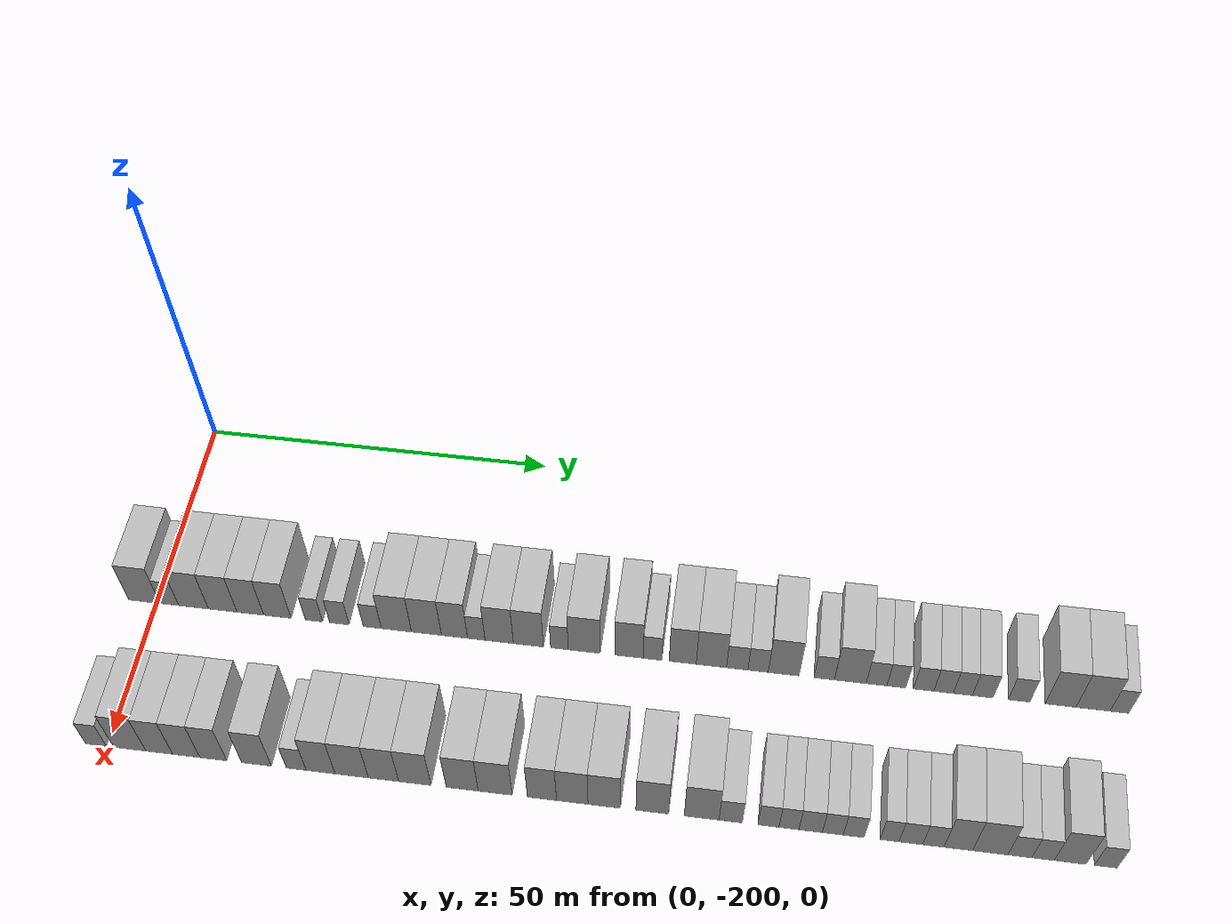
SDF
<sdf version="1.6">
 <world name="default">
  <model name="building_1">
   <static>1</static>
   <pose>25.0000 -201.7638 0 0.000000 0.000000 0.000000</pose>
   <link name="link">
    <pose>0 0 4.50 0 0 0</pose>
    <collision name="collision"><geometry><box><size>10.0000 4.4724 9.0000</size></box></geometry></collision>
    <visual name="visual">
     <cast_shadows>0</cast_shadows>
     <geometry><box><size>10.0000 4.4724 9.0000</size></box></geometry>
     <material>
      <script>
       <uri>model://HANNAS_wall/materials/scripts</uri>
       <uri>model://HANNAS_wall/materials/textures</uri>
       <name>vrc/HANNAS_wall</name>
      </script>
     </material>
    </visual>
   </link>
  </model>
  <model name="building_2">
   <static>1</static>
   <pose>25.0000 -198.2044 0 0.000000 0.000000 0.000000</pose>
   <link name="link">
    <pose>0 0 3.00 0 0 0</pose>
    <collision name="collision"><geometry><box><size>10.0000 2.6465 6.0000</size></box></geometry></collision>
    <visual name="visual">
     <cast_shadows>0</cast_shadows>
     <geometry><box><size>10.0000 2.6465 6.0000</size></box></geometry>
     <material>
      <script>
       <uri>model://HANNAS_wall/materials/scripts</uri>
       <uri>model://HANNAS_wall/materials/textures</uri>
       <name>vrc/HANNAS_wall</name>
      </script>
     </material>
    </visual>
   </link>
  </model>
  <model name="building_3">
   <static>1</static>
   <pose>25.0000 -194.7488 0 0.000000 0.000000 0.000000</pose>
   <link name="link">
    <pose>0 0 4.50 0 0 0</pose>
    <collision name="collision"><geometry><box><size>10.0000 4.2647 9.0000</size></box></geometry></collision>
    <visual name="visual">
     <cast_shadows>0</cast_shadows>
     <geometry><box><size>10.0000 4.2647 9.0000</size></box></geometry>
     <material>
      <script>
       <uri>model://HANNAS_wall/materials/scripts</uri>
       <uri>model://HANNAS_wall/materials/textures</uri>
       <name>vrc/HANNAS_wall</name>
      </script>
     </material>
    </visual>
   </link>
  </model>
  <model name="building_4">
   <static>1</static>
   <pose>25.0000 -190.5852 0 0.000000 0.000000 0.000000</pose>
   <link name="link">
    <pose>0 0 4.50 0 0 0</pose>
    <collision name="collision"><geometry><box><size>10.0000 4.0623 9.0000</size></box></geometry></collision>
    <visual name="visual">
     <cast_shadows>0</cast_shadows>
     <geometry><box><size>10.0000 4.0623 9.0000</size></box></geometry>
     <material>
      <script>
       <uri>model://HANNAS_wall/materials/scripts</uri>
       <uri>model://HANNAS_wall/materials/textures</uri>
       <name>vrc/HANNAS_wall</name>
      </script>
     </material>
    </visual>
   </link>
  </model>
  <model name="building_5">
   <static>1</static>
   <pose>25.0000 -186.6543 0 0.000000 0.000000 0.000000</pose>
   <link name="link">
    <pose>0 0 4.50 0 0 0</pose>
    <collision name="collision"><geometry><box><size>10.0000 3.7996 9.0000</size></box></geometry></collision>
    <visual name="visual">
     <cast_shadows>0</cast_shadows>
     <geometry><box><size>10.0000 3.7996 9.0000</size></box></geometry>
     <material>
      <script>
       <uri>model://HANNAS_wall/materials/scripts</uri>
       <uri>model://HANNAS_wall/materials/textures</uri>
       <name>vrc/HANNAS_wall</name>
      </script>
     </material>
    </visual>
   </link>
  </model>
  <model name="building_6">
   <static>1</static>
   <pose>25.0000 -182.8145 0 0.000000 0.000000 0.000000</pose>
   <link name="link">
    <pose>0 0 4.50 0 0 0</pose>
    <collision name="collision"><geometry><box><size>10.0000 3.8800 9.0000</size></box></geometry></collision>
    <visual name="visual">
     <cast_shadows>0</cast_shadows>
     <geometry><box><size>10.0000 3.8800 9.0000</size></box></geometry>
     <material>
      <script>
       <uri>model://HANNAS_wall/materials/scripts</uri>
       <uri>model://HANNAS_wall/materials/textures</uri>
       <name>vrc/HANNAS_wall</name>
      </script>
     </material>
    </visual>
   </link>
  </model>
  <model name="building_7">
   <static>1</static>
   <pose>25.0000 -177.6527 0 0.000000 0.000000 0.000000</pose>
   <link name="link">
    <pose>0 0 3.00 0 0 0</pose>
    <collision name="collision"><geometry><box><size>10.0000 2.4434 6.0000</size></box></geometry></collision>
    <visual name="visual">
     <cast_shadows>0</cast_shadows>
     <geometry><box><size>10.0000 2.4434 6.0000</size></box></geometry>
     <material>
      <script>
       <uri>model://HANNAS_wall/materials/scripts</uri>
       <uri>model://HANNAS_wall/materials/textures</uri>
       <name>vrc/HANNAS_wall</name>
      </script>
     </material>
    </visual>
   </link>
  </model>
  <model name="building_8">
   <static>1</static>
   <pose>25.0000 -174.0663 0 0.000000 0.000000 0.000000</pose>
   <link name="link">
    <pose>0 0 3.00 0 0 0</pose>
    <collision name="collision"><geometry><box><size>10.0000 2.7294 6.0000</size></box></geometry></collision>
    <visual name="visual">
     <cast_shadows>0</cast_shadows>
     <geometry><box><size>10.0000 2.7294 6.0000</size></box></geometry>
     <material>
      <script>
       <uri>model://HANNAS_wall/materials/scripts</uri>
       <uri>model://HANNAS_wall/materials/textures</uri>
       <name>vrc/HANNAS_wall</name>
      </script>
     </material>
    </visual>
   </link>
  </model>
  <model name="building_9">
   <static>1</static>
   <pose>25.0000 -169.4440 0 0.000000 0.000000 0.000000</pose>
   <link name="link">
    <pose>0 0 3.00 0 0 0</pose>
    <collision name="collision"><geometry><box><size>10.0000 2.5153 6.0000</size></box></geometry></collision>
    <visual name="visual">
     <cast_shadows>0</cast_shadows>
     <geometry><box><size>10.0000 2.5153 6.0000</size></box></geometry>
     <material>
      <script>
       <uri>model://HANNAS_wall/materials/scripts</uri>
       <uri>model://HANNAS_wall/materials/textures</uri>
       <name>vrc/HANNAS_wall</name>
      </script>
     </material>
    </visual>
   </link>
  </model>
  <model name="building_10">
   <static>1</static>
   <pose>25.0000 -166.0645 0 0.000000 0.000000 0.000000</pose>
   <link name="link">
    <pose>0 0 4.50 0 0 0</pose>
    <collision name="collision"><geometry><box><size>10.0000 4.2437 9.0000</size></box></geometry></collision>
    <visual name="visual">
     <cast_shadows>0</cast_shadows>
     <geometry><box><size>10.0000 4.2437 9.0000</size></box></geometry>
     <material>
      <script>
       <uri>model://HANNAS_wall/materials/scripts</uri>
       <uri>model://HANNAS_wall/materials/textures</uri>
       <name>vrc/HANNAS_wall</name>
      </script>
     </material>
    </visual>
   </link>
  </model>
  <model name="building_11">
   <static>1</static>
   <pose>25.0000 -161.8498 0 0.000000 0.000000 0.000000</pose>
   <link name="link">
    <pose>0 0 4.50 0 0 0</pose>
    <collision name="collision"><geometry><box><size>10.0000 4.1857 9.0000</size></box></geometry></collision>
    <visual name="visual">
     <cast_shadows>0</cast_shadows>
     <geometry><box><size>10.0000 4.1857 9.0000</size></box></geometry>
     <material>
      <script>
       <uri>model://HANNAS_wall/materials/scripts</uri>
       <uri>model://HANNAS_wall/materials/textures</uri>
       <name>vrc/HANNAS_wall</name>
      </script>
     </material>
    </visual>
   </link>
  </model>
  <model name="building_12">
   <static>1</static>
   <pose>25.0000 -157.9383 0 0.000000 0.000000 0.000000</pose>
   <link name="link">
    <pose>0 0 4.50 0 0 0</pose>
    <collision name="collision"><geometry><box><size>10.0000 3.6374 9.0000</size></box></geometry></collision>
    <visual name="visual">
     <cast_shadows>0</cast_shadows>
     <geometry><box><size>10.0000 3.6374 9.0000</size></box></geometry>
     <material>
      <script>
       <uri>model://HANNAS_wall/materials/scripts</uri>
       <uri>model://HANNAS_wall/materials/textures</uri>
       <name>vrc/HANNAS_wall</name>
      </script>
     </material>
    </visual>
   </link>
  </model>
  <model name="building_13">
   <static>1</static>
   <pose>25.0000 -154.9052 0 0.000000 0.000000 0.000000</pose>
   <link name="link">
    <pose>0 0 3.00 0 0 0</pose>
    <collision name="collision"><geometry><box><size>10.0000 2.4287 6.0000</size></box></geometry></collision>
    <visual name="visual">
     <cast_shadows>0</cast_shadows>
     <geometry><box><size>10.0000 2.4287 6.0000</size></box></geometry>
     <material>
      <script>
       <uri>model://HANNAS_wall/materials/scripts</uri>
       <uri>model://HANNAS_wall/materials/textures</uri>
       <name>vrc/HANNAS_wall</name>
      </script>
     </material>
    </visual>
   </link>
  </model>
  <model name="building_14">
   <static>1</static>
   <pose>25.0000 -151.7200 0 0.000000 0.000000 0.000000</pose>
   <link name="link">
    <pose>0 0 4.50 0 0 0</pose>
    <collision name="collision"><geometry><box><size>10.0000 3.9417 9.0000</size></box></geometry></collision>
    <visual name="visual">
     <cast_shadows>0</cast_shadows>
     <geometry><box><size>10.0000 3.9417 9.0000</size></box></geometry>
     <material>
      <script>
       <uri>model://HANNAS_wall/materials/scripts</uri>
       <uri>model://HANNAS_wall/materials/textures</uri>
       <name>vrc/HANNAS_wall</name>
      </script>
     </material>
    </visual>
   </link>
  </model>
  <model name="building_15">
   <static>1</static>
   <pose>25.0000 -147.6774 0 0.000000 0.000000 0.000000</pose>
   <link name="link">
    <pose>0 0 4.50 0 0 0</pose>
    <collision name="collision"><geometry><box><size>10.0000 4.1435 9.0000</size></box></geometry></collision>
    <visual name="visual">
     <cast_shadows>0</cast_shadows>
     <geometry><box><size>10.0000 4.1435 9.0000</size></box></geometry>
     <material>
      <script>
       <uri>model://HANNAS_wall/materials/scripts</uri>
       <uri>model://HANNAS_wall/materials/textures</uri>
       <name>vrc/HANNAS_wall</name>
      </script>
     </material>
    </visual>
   </link>
  </model>
  <model name="building_16">
   <static>1</static>
   <pose>25.0000 -143.3900 0 0.000000 0.000000 0.000000</pose>
   <link name="link">
    <pose>0 0 3.00 0 0 0</pose>
    <collision name="collision"><geometry><box><size>10.0000 2.4312 6.0000</size></box></geometry></collision>
    <visual name="visual">
     <cast_shadows>0</cast_shadows>
     <geometry><box><size>10.0000 2.4312 6.0000</size></box></geometry>
     <material>
      <script>
       <uri>model://HANNAS_wall/materials/scripts</uri>
       <uri>model://HANNAS_wall/materials/textures</uri>
       <name>vrc/HANNAS_wall</name>
      </script>
     </material>
    </visual>
   </link>
  </model>
  <model name="building_17">
   <static>1</static>
   <pose>25.0000 -139.9825 0 0.000000 0.000000 0.000000</pose>
   <link name="link">
    <pose>0 0 4.50 0 0 0</pose>
    <collision name="collision"><geometry><box><size>10.0000 4.3837 9.0000</size></box></geometry></collision>
    <visual name="visual">
     <cast_shadows>0</cast_shadows>
     <geometry><box><size>10.0000 4.3837 9.0000</size></box></geometry>
     <material>
      <script>
       <uri>model://HANNAS_wall/materials/scripts</uri>
       <uri>model://HANNAS_wall/materials/textures</uri>
       <name>vrc/HANNAS_wall</name>
      </script>
     </material>
    </visual>
   </link>
  </model>
  <model name="building_18">
   <static>1</static>
   <pose>25.0000 -133.8397 0 0.000000 0.000000 0.000000</pose>
   <link name="link">
    <pose>0 0 4.50 0 0 0</pose>
    <collision name="collision"><geometry><box><size>10.0000 3.9020 9.0000</size></box></geometry></collision>
    <visual name="visual">
     <cast_shadows>0</cast_shadows>
     <geometry><box><size>10.0000 3.9020 9.0000</size></box></geometry>
     <material>
      <script>
       <uri>model://HANNAS_wall/materials/scripts</uri>
       <uri>model://HANNAS_wall/materials/textures</uri>
       <name>vrc/HANNAS_wall</name>
      </script>
     </material>
    </visual>
   </link>
  </model>
  <model name="building_19">
   <static>1</static>
   <pose>25.0000 -130.6132 0 0.000000 0.000000 0.000000</pose>
   <link name="link">
    <pose>0 0 3.00 0 0 0</pose>
    <collision name="collision"><geometry><box><size>10.0000 2.5512 6.0000</size></box></geometry></collision>
    <visual name="visual">
     <cast_shadows>0</cast_shadows>
     <geometry><box><size>10.0000 2.5512 6.0000</size></box></geometry>
     <material>
      <script>
       <uri>model://HANNAS_wall/materials/scripts</uri>
       <uri>model://HANNAS_wall/materials/textures</uri>
       <name>vrc/HANNAS_wall</name>
      </script>
     </material>
    </visual>
   </link>
  </model>
  <model name="building_20">
   <static>1</static>
   <pose>25.0000 -126.4945 0 0.000000 0.000000 0.000000</pose>
   <link name="link">
    <pose>0 0 4.50 0 0 0</pose>
    <collision name="collision"><geometry><box><size>10.0000 3.6862 9.0000</size></box></geometry></collision>
    <visual name="visual">
     <cast_shadows>0</cast_shadows>
     <geometry><box><size>10.0000 3.6862 9.0000</size></box></geometry>
     <material>
      <script>
       <uri>model://HANNAS_wall/materials/scripts</uri>
       <uri>model://HANNAS_wall/materials/textures</uri>
       <name>vrc/HANNAS_wall</name>
      </script>
     </material>
    </visual>
   </link>
  </model>
  <model name="building_21">
   <static>1</static>
   <pose>25.0000 -122.5954 0 0.000000 0.000000 0.000000</pose>
   <link name="link">
    <pose>0 0 4.50 0 0 0</pose>
    <collision name="collision"><geometry><box><size>10.0000 4.1119 9.0000</size></box></geometry></collision>
    <visual name="visual">
     <cast_shadows>0</cast_shadows>
     <geometry><box><size>10.0000 4.1119 9.0000</size></box></geometry>
     <material>
      <script>
       <uri>model://HANNAS_wall/materials/scripts</uri>
       <uri>model://HANNAS_wall/materials/textures</uri>
       <name>vrc/HANNAS_wall</name>
      </script>
     </material>
    </visual>
   </link>
  </model>
  <model name="building_22">
   <static>1</static>
   <pose>25.0000 -119.0821 0 0.000000 0.000000 0.000000</pose>
   <link name="link">
    <pose>0 0 3.00 0 0 0</pose>
    <collision name="collision"><geometry><box><size>10.0000 2.9146 6.0000</size></box></geometry></collision>
    <visual name="visual">
     <cast_shadows>0</cast_shadows>
     <geometry><box><size>10.0000 2.9146 6.0000</size></box></geometry>
     <material>
      <script>
       <uri>model://HANNAS_wall/materials/scripts</uri>
       <uri>model://HANNAS_wall/materials/textures</uri>
       <name>vrc/HANNAS_wall</name>
      </script>
     </material>
    </visual>
   </link>
  </model>
  <model name="building_23">
   <static>1</static>
   <pose>25.0000 -116.2512 0 0.000000 0.000000 0.000000</pose>
   <link name="link">
    <pose>0 0 3.00 0 0 0</pose>
    <collision name="collision"><geometry><box><size>10.0000 2.7474 6.0000</size></box></geometry></collision>
    <visual name="visual">
     <cast_shadows>0</cast_shadows>
     <geometry><box><size>10.0000 2.7474 6.0000</size></box></geometry>
     <material>
      <script>
       <uri>model://HANNAS_wall/materials/scripts</uri>
       <uri>model://HANNAS_wall/materials/textures</uri>
       <name>vrc/HANNAS_wall</name>
      </script>
     </material>
    </visual>
   </link>
  </model>
  <model name="building_24">
   <static>1</static>
   <pose>25.0000 -112.7890 0 0.000000 0.000000 0.000000</pose>
   <link name="link">
    <pose>0 0 4.50 0 0 0</pose>
    <collision name="collision"><geometry><box><size>10.0000 4.1770 9.0000</size></box></geometry></collision>
    <visual name="visual">
     <cast_shadows>0</cast_shadows>
     <geometry><box><size>10.0000 4.1770 9.0000</size></box></geometry>
     <material>
      <script>
       <uri>model://HANNAS_wall/materials/scripts</uri>
       <uri>model://HANNAS_wall/materials/textures</uri>
       <name>vrc/HANNAS_wall</name>
      </script>
     </material>
    </visual>
   </link>
  </model>
  <model name="building_25">
   <static>1</static>
   <pose>25.0000 -107.3323 0 0.000000 0.000000 0.000000</pose>
   <link name="link">
    <pose>0 0 3.00 0 0 0</pose>
    <collision name="collision"><geometry><box><size>10.0000 2.7364 6.0000</size></box></geometry></collision>
    <visual name="visual">
     <cast_shadows>0</cast_shadows>
     <geometry><box><size>10.0000 2.7364 6.0000</size></box></geometry>
     <material>
      <script>
       <uri>model://HANNAS_wall/materials/scripts</uri>
       <uri>model://HANNAS_wall/materials/textures</uri>
       <name>vrc/HANNAS_wall</name>
      </script>
     </material>
    </visual>
   </link>
  </model>
  <model name="building_26">
   <static>1</static>
   <pose>25.0000 -103.8327 0 0.000000 0.000000 0.000000</pose>
   <link name="link">
    <pose>0 0 4.50 0 0 0</pose>
    <collision name="collision"><geometry><box><size>10.0000 4.2629 9.0000</size></box></geometry></collision>
    <visual name="visual">
     <cast_shadows>0</cast_shadows>
     <geometry><box><size>10.0000 4.2629 9.0000</size></box></geometry>
     <material>
      <script>
       <uri>model://HANNAS_wall/materials/scripts</uri>
       <uri>model://HANNAS_wall/materials/textures</uri>
       <name>vrc/HANNAS_wall</name>
      </script>
     </material>
    </visual>
   </link>
  </model>
  <model name="building_27">
   <static>1</static>
   <pose>25.0000 -100.3072 0 0.000000 0.000000 0.000000</pose>
   <link name="link">
    <pose>0 0 3.00 0 0 0</pose>
    <collision name="collision"><geometry><box><size>10.0000 2.7880 6.0000</size></box></geometry></collision>
    <visual name="visual">
     <cast_shadows>0</cast_shadows>
     <geometry><box><size>10.0000 2.7880 6.0000</size></box></geometry>
     <material>
      <script>
       <uri>model://HANNAS_wall/materials/scripts</uri>
       <uri>model://HANNAS_wall/materials/textures</uri>
       <name>vrc/HANNAS_wall</name>
      </script>
     </material>
    </visual>
   </link>
  </model>
  <model name="building_28">
   <static>1</static>
   <pose>25.0000 -97.6408 0 0.000000 0.000000 0.000000</pose>
   <link name="link">
    <pose>0 0 3.00 0 0 0</pose>
    <collision name="collision"><geometry><box><size>10.0000 2.5449 6.0000</size></box></geometry></collision>
    <visual name="visual">
     <cast_shadows>0</cast_shadows>
     <geometry><box><size>10.0000 2.5449 6.0000</size></box></geometry>
     <material>
      <script>
       <uri>model://HANNAS_wall/materials/scripts</uri>
       <uri>model://HANNAS_wall/materials/textures</uri>
       <name>vrc/HANNAS_wall</name>
      </script>
     </material>
    </visual>
   </link>
  </model>
  <model name="building_29">
   <static>1</static>
   <pose>25.0000 -93.9982 0 0.000000 0.000000 0.000000</pose>
   <link name="link">
    <pose>0 0 3.00 0 0 0</pose>
    <collision name="collision"><geometry><box><size>10.0000 2.7402 6.0000</size></box></geometry></collision>
    <visual name="visual">
     <cast_shadows>0</cast_shadows>
     <geometry><box><size>10.0000 2.7402 6.0000</size></box></geometry>
     <material>
      <script>
       <uri>model://HANNAS_wall/materials/scripts</uri>
       <uri>model://HANNAS_wall/materials/textures</uri>
       <name>vrc/HANNAS_wall</name>
      </script>
     </material>
    </visual>
   </link>
  </model>
  <model name="building_30">
   <static>1</static>
   <pose>25.0000 -91.3295 0 0.000000 0.000000 0.000000</pose>
   <link name="link">
    <pose>0 0 3.00 0 0 0</pose>
    <collision name="collision"><geometry><box><size>10.0000 2.5974 6.0000</size></box></geometry></collision>
    <visual name="visual">
     <cast_shadows>0</cast_shadows>
     <geometry><box><size>10.0000 2.5974 6.0000</size></box></geometry>
     <material>
      <script>
       <uri>model://HANNAS_wall/materials/scripts</uri>
       <uri>model://HANNAS_wall/materials/textures</uri>
       <name>vrc/HANNAS_wall</name>
      </script>
     </material>
    </visual>
   </link>
  </model>
  <model name="building_31">
   <static>1</static>
   <pose>25.0000 -88.7630 0 0.000000 0.000000 0.000000</pose>
   <link name="link">
    <pose>0 0 3.00 0 0 0</pose>
    <collision name="collision"><geometry><box><size>10.0000 2.5355 6.0000</size></box></geometry></collision>
    <visual name="visual">
     <cast_shadows>0</cast_shadows>
     <geometry><box><size>10.0000 2.5355 6.0000</size></box></geometry>
     <material>
      <script>
       <uri>model://HANNAS_wall/materials/scripts</uri>
       <uri>model://HANNAS_wall/materials/textures</uri>
       <name>vrc/HANNAS_wall</name>
      </script>
     </material>
    </visual>
   </link>
  </model>
  <model name="building_32">
   <static>1</static>
   <pose>25.0000 -86.1214 0 0.000000 0.000000 0.000000</pose>
   <link name="link">
    <pose>0 0 3.00 0 0 0</pose>
    <collision name="collision"><geometry><box><size>10.0000 2.7477 6.0000</size></box></geometry></collision>
    <visual name="visual">
     <cast_shadows>0</cast_shadows>
     <geometry><box><size>10.0000 2.7477 6.0000</size></box></geometry>
     <material>
      <script>
       <uri>model://HANNAS_wall/materials/scripts</uri>
       <uri>model://HANNAS_wall/materials/textures</uri>
       <name>vrc/HANNAS_wall</name>
      </script>
     </material>
    </visual>
   </link>
  </model>
  <model name="building_33">
   <static>1</static>
   <pose>25.0000 -81.3096 0 0.000000 0.000000 0.000000</pose>
   <link name="link">
    <pose>0 0 3.00 0 0 0</pose>
    <collision name="collision"><geometry><box><size>10.0000 2.8758 6.0000</size></box></geometry></collision>
    <visual name="visual">
     <cast_shadows>0</cast_shadows>
     <geometry><box><size>10.0000 2.8758 6.0000</size></box></geometry>
     <material>
      <script>
       <uri>model://HANNAS_wall/materials/scripts</uri>
       <uri>model://HANNAS_wall/materials/textures</uri>
       <name>vrc/HANNAS_wall</name>
      </script>
     </material>
    </visual>
   </link>
  </model>
  <model name="building_34">
   <static>1</static>
   <pose>25.0000 -75.8325 0 0.000000 0.000000 0.000000</pose>
   <link name="link">
    <pose>0 0 4.50 0 0 0</pose>
    <collision name="collision"><geometry><box><size>10.0000 4.0785 9.0000</size></box></geometry></collision>
    <visual name="visual">
     <cast_shadows>0</cast_shadows>
     <geometry><box><size>10.0000 4.0785 9.0000</size></box></geometry>
     <material>
      <script>
       <uri>model://HANNAS_wall/materials/scripts</uri>
       <uri>model://HANNAS_wall/materials/textures</uri>
       <name>vrc/HANNAS_wall</name>
      </script>
     </material>
    </visual>
   </link>
  </model>
  <model name="building_35">
   <static>1</static>
   <pose>25.0000 -71.5565 0 0.000000 0.000000 0.000000</pose>
   <link name="link">
    <pose>0 0 4.50 0 0 0</pose>
    <collision name="collision"><geometry><box><size>10.0000 4.4735 9.0000</size></box></geometry></collision>
    <visual name="visual">
     <cast_shadows>0</cast_shadows>
     <geometry><box><size>10.0000 4.4735 9.0000</size></box></geometry>
     <material>
      <script>
       <uri>model://HANNAS_wall/materials/scripts</uri>
       <uri>model://HANNAS_wall/materials/textures</uri>
       <name>vrc/HANNAS_wall</name>
      </script>
     </material>
    </visual>
   </link>
  </model>
  <model name="building_36">
   <static>1</static>
   <pose>25.0000 -68.0901 0 0.000000 0.000000 0.000000</pose>
   <link name="link">
    <pose>0 0 3.00 0 0 0</pose>
    <collision name="collision"><geometry><box><size>10.0000 2.4593 6.0000</size></box></geometry></collision>
    <visual name="visual">
     <cast_shadows>0</cast_shadows>
     <geometry><box><size>10.0000 2.4593 6.0000</size></box></geometry>
     <material>
      <script>
       <uri>model://HANNAS_wall/materials/scripts</uri>
       <uri>model://HANNAS_wall/materials/textures</uri>
       <name>vrc/HANNAS_wall</name>
      </script>
     </material>
    </visual>
   </link>
  </model>
  <model name="building_104">
   <static>1</static>
   <pose>47.0000 -201.6060 0 0.000000 0.000000 0.000000</pose>
   <link name="link">
    <pose>0 0 3.00 0 0 0</pose>
    <collision name="collision"><geometry><box><size>10.0000 2.7880 6.0000</size></box></geometry></collision>
    <visual name="visual">
     <cast_shadows>0</cast_shadows>
     <geometry><box><size>10.0000 2.7880 6.0000</size></box></geometry>
     <material>
      <script>
       <uri>model://HANNAS_wall/materials/scripts</uri>
       <uri>model://HANNAS_wall/materials/textures</uri>
       <name>vrc/HANNAS_wall</name>
      </script>
     </material>
    </visual>
   </link>
  </model>
  <model name="building_105">
   <static>1</static>
   <pose>47.0000 -197.0332 0 0.000000 0.000000 0.000000</pose>
   <link name="link">
    <pose>0 0 4.50 0 0 0</pose>
    <collision name="collision"><geometry><box><size>10.0000 4.3576 9.0000</size></box></geometry></collision>
    <visual name="visual">
     <cast_shadows>0</cast_shadows>
     <geometry><box><size>10.0000 4.3576 9.0000</size></box></geometry>
     <material>
      <script>
       <uri>model://HANNAS_wall/materials/scripts</uri>
       <uri>model://HANNAS_wall/materials/textures</uri>
       <name>vrc/HANNAS_wall</name>
      </script>
     </material>
    </visual>
   </link>
  </model>
  <model name="building_106">
   <static>1</static>
   <pose>47.0000 -193.0505 0 0.000000 0.000000 0.000000</pose>
   <link name="link">
    <pose>0 0 4.50 0 0 0</pose>
    <collision name="collision"><geometry><box><size>10.0000 3.6078 9.0000</size></box></geometry></collision>
    <visual name="visual">
     <cast_shadows>0</cast_shadows>
     <geometry><box><size>10.0000 3.6078 9.0000</size></box></geometry>
     <material>
      <script>
       <uri>model://HANNAS_wall/materials/scripts</uri>
       <uri>model://HANNAS_wall/materials/textures</uri>
       <name>vrc/HANNAS_wall</name>
      </script>
     </material>
    </visual>
   </link>
  </model>
  <model name="building_107">
   <static>1</static>
   <pose>47.0000 -189.4188 0 0.000000 0.000000 0.000000</pose>
   <link name="link">
    <pose>0 0 4.50 0 0 0</pose>
    <collision name="collision"><geometry><box><size>10.0000 3.6557 9.0000</size></box></geometry></collision>
    <visual name="visual">
     <cast_shadows>0</cast_shadows>
     <geometry><box><size>10.0000 3.6557 9.0000</size></box></geometry>
     <material>
      <script>
       <uri>model://HANNAS_wall/materials/scripts</uri>
       <uri>model://HANNAS_wall/materials/textures</uri>
       <name>vrc/HANNAS_wall</name>
      </script>
     </material>
    </visual>
   </link>
  </model>
  <model name="building_108">
   <static>1</static>
   <pose>47.0000 -185.7896 0 0.000000 0.000000 0.000000</pose>
   <link name="link">
    <pose>0 0 4.50 0 0 0</pose>
    <collision name="collision"><geometry><box><size>10.0000 3.6027 9.0000</size></box></geometry></collision>
    <visual name="visual">
     <cast_shadows>0</cast_shadows>
     <geometry><box><size>10.0000 3.6027 9.0000</size></box></geometry>
     <material>
      <script>
       <uri>model://HANNAS_wall/materials/scripts</uri>
       <uri>model://HANNAS_wall/materials/textures</uri>
       <name>vrc/HANNAS_wall</name>
      </script>
     </material>
    </visual>
   </link>
  </model>
  <model name="building_109">
   <static>1</static>
   <pose>47.0000 -180.0034 0 0.000000 0.000000 0.000000</pose>
   <link name="link">
    <pose>0 0 4.50 0 0 0</pose>
    <collision name="collision"><geometry><box><size>10.0000 3.9696 9.0000</size></box></geometry></collision>
    <visual name="visual">
     <cast_shadows>0</cast_shadows>
     <geometry><box><size>10.0000 3.9696 9.0000</size></box></geometry>
     <material>
      <script>
       <uri>model://HANNAS_wall/materials/scripts</uri>
       <uri>model://HANNAS_wall/materials/textures</uri>
       <name>vrc/HANNAS_wall</name>
      </script>
     </material>
    </visual>
   </link>
  </model>
  <model name="building_110">
   <static>1</static>
   <pose>47.0000 -174.7080 0 0.000000 0.000000 0.000000</pose>
   <link name="link">
    <pose>0 0 3.00 0 0 0</pose>
    <collision name="collision"><geometry><box><size>10.0000 2.6212 6.0000</size></box></geometry></collision>
    <visual name="visual">
     <cast_shadows>0</cast_shadows>
     <geometry><box><size>10.0000 2.6212 6.0000</size></box></geometry>
     <material>
      <script>
       <uri>model://HANNAS_wall/materials/scripts</uri>
       <uri>model://HANNAS_wall/materials/textures</uri>
       <name>vrc/HANNAS_wall</name>
      </script>
     </material>
    </visual>
   </link>
  </model>
  <model name="building_111">
   <static>1</static>
   <pose>47.0000 -171.4798 0 0.000000 0.000000 0.000000</pose>
   <link name="link">
    <pose>0 0 4.50 0 0 0</pose>
    <collision name="collision"><geometry><box><size>10.0000 3.8352 9.0000</size></box></geometry></collision>
    <visual name="visual">
     <cast_shadows>0</cast_shadows>
     <geometry><box><size>10.0000 3.8352 9.0000</size></box></geometry>
     <material>
      <script>
       <uri>model://HANNAS_wall/materials/scripts</uri>
       <uri>model://HANNAS_wall/materials/textures</uri>
       <name>vrc/HANNAS_wall</name>
      </script>
     </material>
    </visual>
   </link>
  </model>
  <model name="building_112">
   <static>1</static>
   <pose>47.0000 -167.3536 0 0.000000 0.000000 0.000000</pose>
   <link name="link">
    <pose>0 0 4.50 0 0 0</pose>
    <collision name="collision"><geometry><box><size>10.0000 4.4173 9.0000</size></box></geometry></collision>
    <visual name="visual">
     <cast_shadows>0</cast_shadows>
     <geometry><box><size>10.0000 4.4173 9.0000</size></box></geometry>
     <material>
      <script>
       <uri>model://HANNAS_wall/materials/scripts</uri>
       <uri>model://HANNAS_wall/materials/textures</uri>
       <name>vrc/HANNAS_wall</name>
      </script>
     </material>
    </visual>
   </link>
  </model>
  <model name="building_113">
   <static>1</static>
   <pose>47.0000 -163.1488 0 0.000000 0.000000 0.000000</pose>
   <link name="link">
    <pose>0 0 4.50 0 0 0</pose>
    <collision name="collision"><geometry><box><size>10.0000 3.9922 9.0000</size></box></geometry></collision>
    <visual name="visual">
     <cast_shadows>0</cast_shadows>
     <geometry><box><size>10.0000 3.9922 9.0000</size></box></geometry>
     <material>
      <script>
       <uri>model://HANNAS_wall/materials/scripts</uri>
       <uri>model://HANNAS_wall/materials/textures</uri>
       <name>vrc/HANNAS_wall</name>
      </script>
     </material>
    </visual>
   </link>
  </model>
  <model name="building_114">
   <static>1</static>
   <pose>47.0000 -159.0207 0 0.000000 0.000000 0.000000</pose>
   <link name="link">
    <pose>0 0 4.50 0 0 0</pose>
    <collision name="collision"><geometry><box><size>10.0000 4.2641 9.0000</size></box></geometry></collision>
    <visual name="visual">
     <cast_shadows>0</cast_shadows>
     <geometry><box><size>10.0000 4.2641 9.0000</size></box></geometry>
     <material>
      <script>
       <uri>model://HANNAS_wall/materials/scripts</uri>
       <uri>model://HANNAS_wall/materials/textures</uri>
       <name>vrc/HANNAS_wall</name>
      </script>
     </material>
    </visual>
   </link>
  </model>
  <model name="building_115">
   <static>1</static>
   <pose>47.0000 -152.7908 0 0.000000 0.000000 0.000000</pose>
   <link name="link">
    <pose>0 0 4.50 0 0 0</pose>
    <collision name="collision"><geometry><box><size>10.0000 4.1956 9.0000</size></box></geometry></collision>
    <visual name="visual">
     <cast_shadows>0</cast_shadows>
     <geometry><box><size>10.0000 4.1956 9.0000</size></box></geometry>
     <material>
      <script>
       <uri>model://HANNAS_wall/materials/scripts</uri>
       <uri>model://HANNAS_wall/materials/textures</uri>
       <name>vrc/HANNAS_wall</name>
      </script>
     </material>
    </visual>
   </link>
  </model>
  <model name="building_116">
   <static>1</static>
   <pose>47.0000 -148.4805 0 0.000000 0.000000 0.000000</pose>
   <link name="link">
    <pose>0 0 4.50 0 0 0</pose>
    <collision name="collision"><geometry><box><size>10.0000 4.4251 9.0000</size></box></geometry></collision>
    <visual name="visual">
     <cast_shadows>0</cast_shadows>
     <geometry><box><size>10.0000 4.4251 9.0000</size></box></geometry>
     <material>
      <script>
       <uri>model://HANNAS_wall/materials/scripts</uri>
       <uri>model://HANNAS_wall/materials/textures</uri>
       <name>vrc/HANNAS_wall</name>
      </script>
     </material>
    </visual>
   </link>
  </model>
  <model name="building_117">
   <static>1</static>
   <pose>47.0000 -142.3823 0 0.000000 0.000000 0.000000</pose>
   <link name="link">
    <pose>0 0 4.50 0 0 0</pose>
    <collision name="collision"><geometry><box><size>10.0000 3.7714 9.0000</size></box></geometry></collision>
    <visual name="visual">
     <cast_shadows>0</cast_shadows>
     <geometry><box><size>10.0000 3.7714 9.0000</size></box></geometry>
     <material>
      <script>
       <uri>model://HANNAS_wall/materials/scripts</uri>
       <uri>model://HANNAS_wall/materials/textures</uri>
       <name>vrc/HANNAS_wall</name>
      </script>
     </material>
    </visual>
   </link>
  </model>
  <model name="building_118">
   <static>1</static>
   <pose>47.0000 -138.4520 0 0.000000 0.000000 0.000000</pose>
   <link name="link">
    <pose>0 0 4.50 0 0 0</pose>
    <collision name="collision"><geometry><box><size>10.0000 4.0891 9.0000</size></box></geometry></collision>
    <visual name="visual">
     <cast_shadows>0</cast_shadows>
     <geometry><box><size>10.0000 4.0891 9.0000</size></box></geometry>
     <material>
      <script>
       <uri>model://HANNAS_wall/materials/scripts</uri>
       <uri>model://HANNAS_wall/materials/textures</uri>
       <name>vrc/HANNAS_wall</name>
      </script>
     </material>
    </visual>
   </link>
  </model>
  <model name="building_119">
   <static>1</static>
   <pose>47.0000 -134.3163 0 0.000000 0.000000 0.000000</pose>
   <link name="link">
    <pose>0 0 4.50 0 0 0</pose>
    <collision name="collision"><geometry><box><size>10.0000 4.1824 9.0000</size></box></geometry></collision>
    <visual name="visual">
     <cast_shadows>0</cast_shadows>
     <geometry><box><size>10.0000 4.1824 9.0000</size></box></geometry>
     <material>
      <script>
       <uri>model://HANNAS_wall/materials/scripts</uri>
       <uri>model://HANNAS_wall/materials/textures</uri>
       <name>vrc/HANNAS_wall</name>
      </script>
     </material>
    </visual>
   </link>
  </model>
  <model name="building_120">
   <static>1</static>
   <pose>47.0000 -128.1151 0 0.000000 0.000000 0.000000</pose>
   <link name="link">
    <pose>0 0 4.50 0 0 0</pose>
    <collision name="collision"><geometry><box><size>10.0000 4.2199 9.0000</size></box></geometry></collision>
    <visual name="visual">
     <cast_shadows>0</cast_shadows>
     <geometry><box><size>10.0000 4.2199 9.0000</size></box></geometry>
     <material>
      <script>
       <uri>model://HANNAS_wall/materials/scripts</uri>
       <uri>model://HANNAS_wall/materials/textures</uri>
       <name>vrc/HANNAS_wall</name>
      </script>
     </material>
    </visual>
   </link>
  </model>
  <model name="building_121">
   <static>1</static>
   <pose>47.0000 -121.7799 0 0.000000 0.000000 0.000000</pose>
   <link name="link">
    <pose>0 0 4.50 0 0 0</pose>
    <collision name="collision"><geometry><box><size>10.0000 4.4505 9.0000</size></box></geometry></collision>
    <visual name="visual">
     <cast_shadows>0</cast_shadows>
     <geometry><box><size>10.0000 4.4505 9.0000</size></box></geometry>
     <material>
      <script>
       <uri>model://HANNAS_wall/materials/scripts</uri>
       <uri>model://HANNAS_wall/materials/textures</uri>
       <name>vrc/HANNAS_wall</name>
      </script>
     </material>
    </visual>
   </link>
  </model>
  <model name="building_122">
   <static>1</static>
   <pose>47.0000 -118.0635 0 0.000000 0.000000 0.000000</pose>
   <link name="link">
    <pose>0 0 3.00 0 0 0</pose>
    <collision name="collision"><geometry><box><size>10.0000 2.9823 6.0000</size></box></geometry></collision>
    <visual name="visual">
     <cast_shadows>0</cast_shadows>
     <geometry><box><size>10.0000 2.9823 6.0000</size></box></geometry>
     <material>
      <script>
       <uri>model://HANNAS_wall/materials/scripts</uri>
       <uri>model://HANNAS_wall/materials/textures</uri>
       <name>vrc/HANNAS_wall</name>
      </script>
     </material>
    </visual>
   </link>
  </model>
  <model name="building_123">
   <static>1</static>
   <pose>47.0000 -113.2379 0 0.000000 0.000000 0.000000</pose>
   <link name="link">
    <pose>0 0 3.00 0 0 0</pose>
    <collision name="collision"><geometry><box><size>10.0000 2.6688 6.0000</size></box></geometry></collision>
    <visual name="visual">
     <cast_shadows>0</cast_shadows>
     <geometry><box><size>10.0000 2.6688 6.0000</size></box></geometry>
     <material>
      <script>
       <uri>model://HANNAS_wall/materials/scripts</uri>
       <uri>model://HANNAS_wall/materials/textures</uri>
       <name>vrc/HANNAS_wall</name>
      </script>
     </material>
    </visual>
   </link>
  </model>
  <model name="building_124">
   <static>1</static>
   <pose>47.0000 -110.6400 0 0.000000 0.000000 0.000000</pose>
   <link name="link">
    <pose>0 0 3.00 0 0 0</pose>
    <collision name="collision"><geometry><box><size>10.0000 2.5270 6.0000</size></box></geometry></collision>
    <visual name="visual">
     <cast_shadows>0</cast_shadows>
     <geometry><box><size>10.0000 2.5270 6.0000</size></box></geometry>
     <material>
      <script>
       <uri>model://HANNAS_wall/materials/scripts</uri>
       <uri>model://HANNAS_wall/materials/textures</uri>
       <name>vrc/HANNAS_wall</name>
      </script>
     </material>
    </visual>
   </link>
  </model>
  <model name="building_125">
   <static>1</static>
   <pose>47.0000 -107.8819 0 0.000000 0.000000 0.000000</pose>
   <link name="link">
    <pose>0 0 3.00 0 0 0</pose>
    <collision name="collision"><geometry><box><size>10.0000 2.9890 6.0000</size></box></geometry></collision>
    <visual name="visual">
     <cast_shadows>0</cast_shadows>
     <geometry><box><size>10.0000 2.9890 6.0000</size></box></geometry>
     <material>
      <script>
       <uri>model://HANNAS_wall/materials/scripts</uri>
       <uri>model://HANNAS_wall/materials/textures</uri>
       <name>vrc/HANNAS_wall</name>
      </script>
     </material>
    </visual>
   </link>
  </model>
  <model name="building_126">
   <static>1</static>
   <pose>47.0000 -105.0671 0 0.000000 0.000000 0.000000</pose>
   <link name="link">
    <pose>0 0 3.00 0 0 0</pose>
    <collision name="collision"><geometry><box><size>10.0000 2.6407 6.0000</size></box></geometry></collision>
    <visual name="visual">
     <cast_shadows>0</cast_shadows>
     <geometry><box><size>10.0000 2.6407 6.0000</size></box></geometry>
     <material>
      <script>
       <uri>model://HANNAS_wall/materials/scripts</uri>
       <uri>model://HANNAS_wall/materials/textures</uri>
       <name>vrc/HANNAS_wall</name>
      </script>
     </material>
    </visual>
   </link>
  </model>
  <model name="building_127">
   <static>1</static>
   <pose>47.0000 -102.4216 0 0.000000 0.000000 0.000000</pose>
   <link name="link">
    <pose>0 0 3.00 0 0 0</pose>
    <collision name="collision"><geometry><box><size>10.0000 2.6502 6.0000</size></box></geometry></collision>
    <visual name="visual">
     <cast_shadows>0</cast_shadows>
     <geometry><box><size>10.0000 2.6502 6.0000</size></box></geometry>
     <material>
      <script>
       <uri>model://HANNAS_wall/materials/scripts</uri>
       <uri>model://HANNAS_wall/materials/textures</uri>
       <name>vrc/HANNAS_wall</name>
      </script>
     </material>
    </visual>
   </link>
  </model>
  <model name="building_128">
   <static>1</static>
   <pose>47.0000 -97.8955 0 0.000000 0.000000 0.000000</pose>
   <link name="link">
    <pose>0 0 3.00 0 0 0</pose>
    <collision name="collision"><geometry><box><size>10.0000 2.4022 6.0000</size></box></geometry></collision>
    <visual name="visual">
     <cast_shadows>0</cast_shadows>
     <geometry><box><size>10.0000 2.4022 6.0000</size></box></geometry>
     <material>
      <script>
       <uri>model://HANNAS_wall/materials/scripts</uri>
       <uri>model://HANNAS_wall/materials/textures</uri>
       <name>vrc/HANNAS_wall</name>
      </script>
     </material>
    </visual>
   </link>
  </model>
  <model name="building_129">
   <static>1</static>
   <pose>47.0000 -95.2131 0 0.000000 0.000000 0.000000</pose>
   <link name="link">
    <pose>0 0 3.00 0 0 0</pose>
    <collision name="collision"><geometry><box><size>10.0000 2.9627 6.0000</size></box></geometry></collision>
    <visual name="visual">
     <cast_shadows>0</cast_shadows>
     <geometry><box><size>10.0000 2.9627 6.0000</size></box></geometry>
     <material>
      <script>
       <uri>model://HANNAS_wall/materials/scripts</uri>
       <uri>model://HANNAS_wall/materials/textures</uri>
       <name>vrc/HANNAS_wall</name>
      </script>
     </material>
    </visual>
   </link>
  </model>
  <model name="building_130">
   <static>1</static>
   <pose>47.0000 -92.3951 0 0.000000 0.000000 0.000000</pose>
   <link name="link">
    <pose>0 0 3.00 0 0 0</pose>
    <collision name="collision"><geometry><box><size>10.0000 2.6732 6.0000</size></box></geometry></collision>
    <visual name="visual">
     <cast_shadows>0</cast_shadows>
     <geometry><box><size>10.0000 2.6732 6.0000</size></box></geometry>
     <material>
      <script>
       <uri>model://HANNAS_wall/materials/scripts</uri>
       <uri>model://HANNAS_wall/materials/textures</uri>
       <name>vrc/HANNAS_wall</name>
      </script>
     </material>
    </visual>
   </link>
  </model>
  <model name="building_131">
   <static>1</static>
   <pose>47.0000 -89.2547 0 0.000000 0.000000 0.000000</pose>
   <link name="link">
    <pose>0 0 4.50 0 0 0</pose>
    <collision name="collision"><geometry><box><size>10.0000 3.6077 9.0000</size></box></geometry></collision>
    <visual name="visual">
     <cast_shadows>0</cast_shadows>
     <geometry><box><size>10.0000 3.6077 9.0000</size></box></geometry>
     <material>
      <script>
       <uri>model://HANNAS_wall/materials/scripts</uri>
       <uri>model://HANNAS_wall/materials/textures</uri>
       <name>vrc/HANNAS_wall</name>
      </script>
     </material>
    </visual>
   </link>
  </model>
  <model name="building_132">
   <static>1</static>
   <pose>47.0000 -85.2551 0 0.000000 0.000000 0.000000</pose>
   <link name="link">
    <pose>0 0 4.50 0 0 0</pose>
    <collision name="collision"><geometry><box><size>10.0000 4.3915 9.0000</size></box></geometry></collision>
    <visual name="visual">
     <cast_shadows>0</cast_shadows>
     <geometry><box><size>10.0000 4.3915 9.0000</size></box></geometry>
     <material>
      <script>
       <uri>model://HANNAS_wall/materials/scripts</uri>
       <uri>model://HANNAS_wall/materials/textures</uri>
       <name>vrc/HANNAS_wall</name>
      </script>
     </material>
    </visual>
   </link>
  </model>
  <model name="building_133">
   <static>1</static>
   <pose>47.0000 -81.5689 0 0.000000 0.000000 0.000000</pose>
   <link name="link">
    <pose>0 0 3.00 0 0 0</pose>
    <collision name="collision"><geometry><box><size>10.0000 2.9810 6.0000</size></box></geometry></collision>
    <visual name="visual">
     <cast_shadows>0</cast_shadows>
     <geometry><box><size>10.0000 2.9810 6.0000</size></box></geometry>
     <material>
      <script>
       <uri>model://HANNAS_wall/materials/scripts</uri>
       <uri>model://HANNAS_wall/materials/textures</uri>
       <name>vrc/HANNAS_wall</name>
      </script>
     </material>
    </visual>
   </link>
  </model>
  <model name="building_134">
   <static>1</static>
   <pose>47.0000 -78.6858 0 0.000000 0.000000 0.000000</pose>
   <link name="link">
    <pose>0 0 3.00 0 0 0</pose>
    <collision name="collision"><geometry><box><size>10.0000 2.7850 6.0000</size></box></geometry></collision>
    <visual name="visual">
     <cast_shadows>0</cast_shadows>
     <geometry><box><size>10.0000 2.7850 6.0000</size></box></geometry>
     <material>
      <script>
       <uri>model://HANNAS_wall/materials/scripts</uri>
       <uri>model://HANNAS_wall/materials/textures</uri>
       <name>vrc/HANNAS_wall</name>
      </script>
     </material>
    </visual>
   </link>
  </model>
  <model name="building_135">
   <static>1</static>
   <pose>47.0000 -75.3108 0 0.000000 0.000000 0.000000</pose>
   <link name="link">
    <pose>0 0 4.50 0 0 0</pose>
    <collision name="collision"><geometry><box><size>10.0000 3.9650 9.0000</size></box></geometry></collision>
    <visual name="visual">
     <cast_shadows>0</cast_shadows>
     <geometry><box><size>10.0000 3.9650 9.0000</size></box></geometry>
     <material>
      <script>
       <uri>model://HANNAS_wall/materials/scripts</uri>
       <uri>model://HANNAS_wall/materials/textures</uri>
       <name>vrc/HANNAS_wall</name>
      </script>
     </material>
    </visual>
   </link>
  </model>
  <model name="building_136">
   <static>1</static>
   <pose>47.0000 -70.9172 0 0.000000 0.000000 0.000000</pose>
   <link name="link">
    <pose>0 0 3.00 0 0 0</pose>
    <collision name="collision"><geometry><box><size>10.0000 2.8223 6.0000</size></box></geometry></collision>
    <visual name="visual">
     <cast_shadows>0</cast_shadows>
     <geometry><box><size>10.0000 2.8223 6.0000</size></box></geometry>
     <material>
      <script>
       <uri>model://HANNAS_wall/materials/scripts</uri>
       <uri>model://HANNAS_wall/materials/textures</uri>
       <name>vrc/HANNAS_wall</name>
      </script>
     </material>
    </visual>
   </link>
  </model>
 </world>
</sdf>
